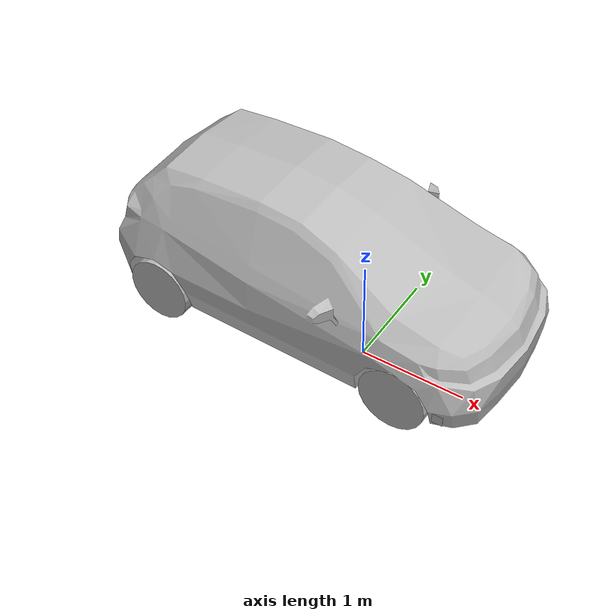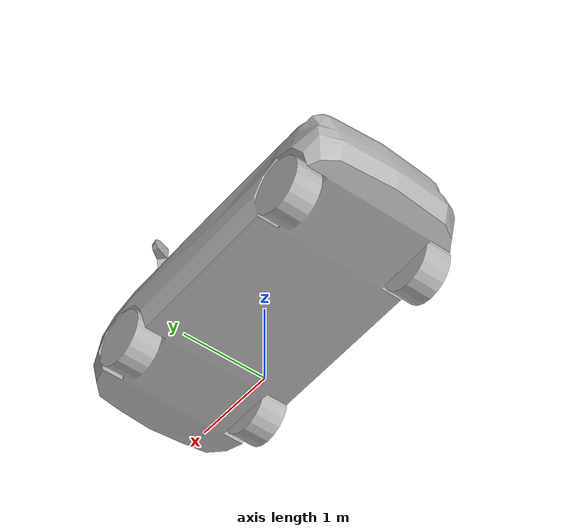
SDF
<?xml version='1.0'?>
<sdf version='1.6'>
  <model name='toyota_aruco100'>
    <model name='aruco_marker'>
      <static>true</static>
      <link name='link'>
	<static>1</static>
        <inertial>
          <pose frame=''>0 0 0 0 -0 0</pose>
          <mass>0.001</mass>
          <inertia>
            <ixx>3.75e-06</ixx>
            <ixy>0</ixy>
            <ixz>0</ixz>
            <iyy>1.875e-06</iyy>
            <iyz>0</iyz>
            <izz>1.875e-06</izz>
          </inertia>
        </inertial>
        <visual name='front_visual'>
          <pose frame=''>5e-05 0 0 0 -0 0</pose>
          <geometry>
            <box>
              <size>0.1 0.005 0.1</size>
            </box>
          </geometry>
          <material>
            <script>
              <uri>model://aruco_marker/materials/scripts</uri>
              <uri>model://aruco_marker/materials/textures</uri>
              <name>Marker</name>
            </script>
          </material>
        </visual>
        <visual name='rear_visual'>
          <pose frame=''>-5e-05 0 0 0 -0 0</pose>
          <geometry>
            <box>
              <size>0.1 0.0015 0.1</size>
            </box>
          </geometry>
        </visual>
        <collision name='collision'>
          <pose frame=''>0 0 0 0 -0 0</pose>
          <geometry>
            <box>
              <size>0.05 0.05 0.05</size>
            </box>
          </geometry>
        </collision>
      </link>
      <pose frame=''>0.992046 -0.463762 0.170038 0 -0 0</pose>
    </model>
    <model name='hatchback'>
      <static>true</static>
      <link name='link'>
        <collision name='collision'>
          <pose frame=''>0 0 0 0 -0 1.5708</pose>
          <geometry>
            <mesh>
              <scale>0.0254 0.0254 0.0254</scale>
              <uri>model://hatchback/meshes/hatchback.obj</uri>
            </mesh>
          </geometry>
        </collision>
        <visual name='visual'>
          <pose frame=''>0 0 0 0 -0 1.5708</pose>
          <geometry>
            <mesh>
              <scale>0.0254 0.0254 0.0254</scale>
              <uri>model://hatchback/meshes/hatchback.obj</uri>
            </mesh>
          </geometry>
        </visual>
      </link>
      <pose frame=''>-0.992046 0.463762 -0.170039 0 -0 0</pose>
    </model>
    <static>1</static>
    <allow_auto_disable>1</allow_auto_disable>
  </model>
</sdf>
